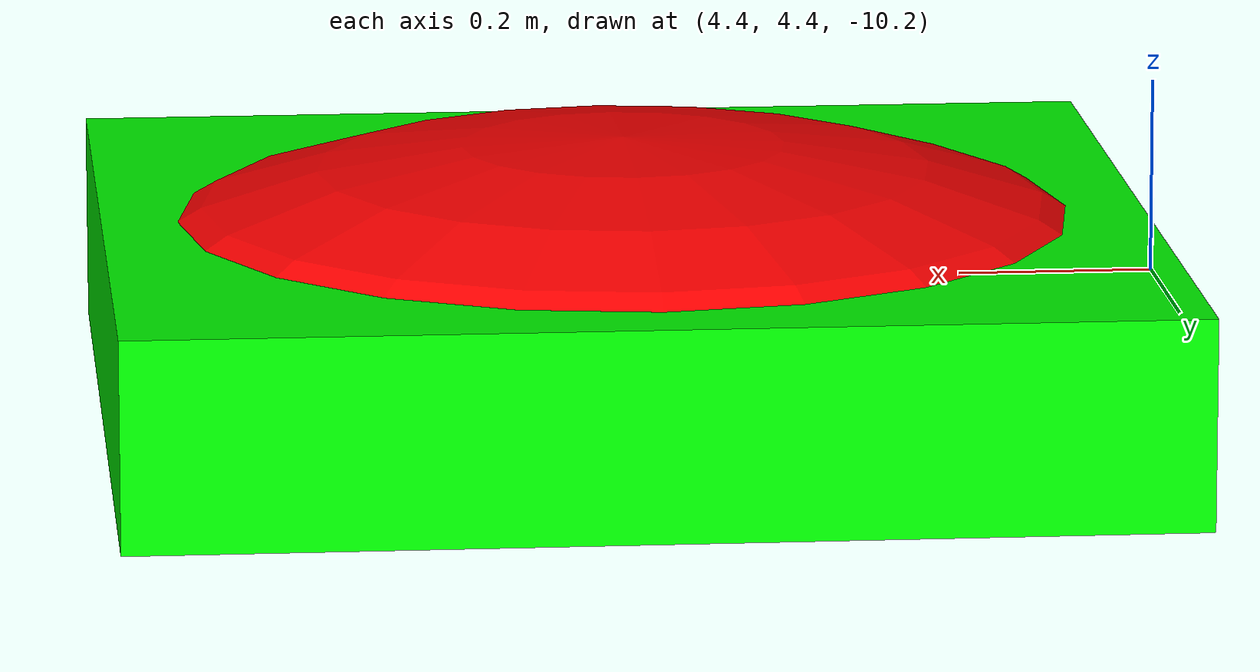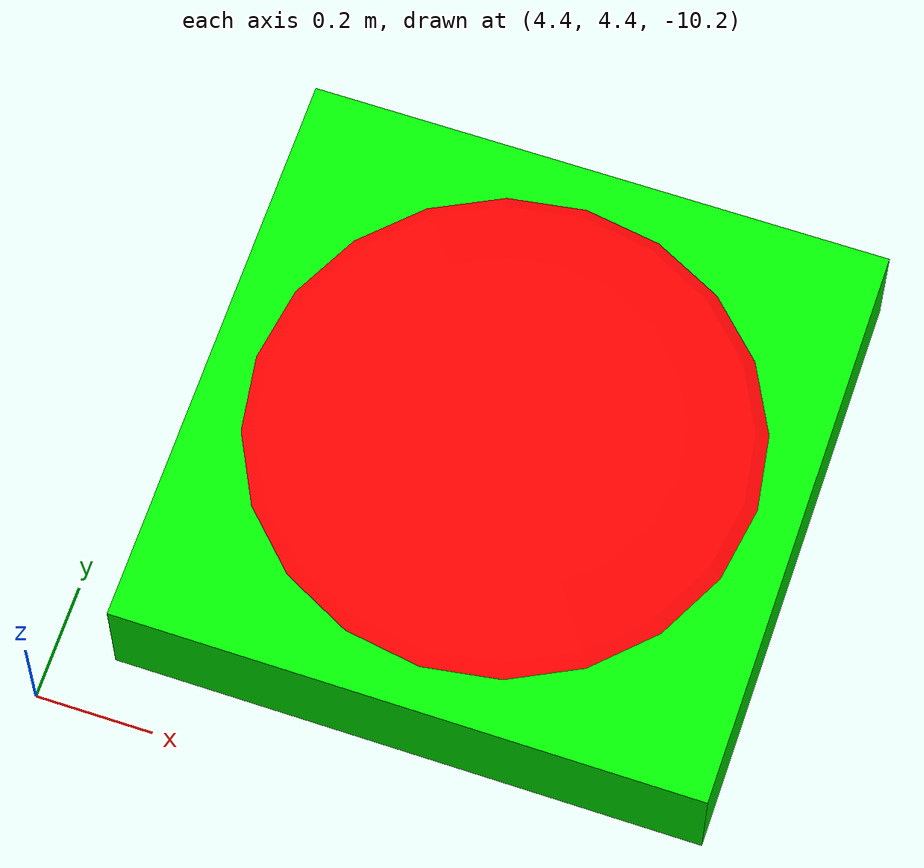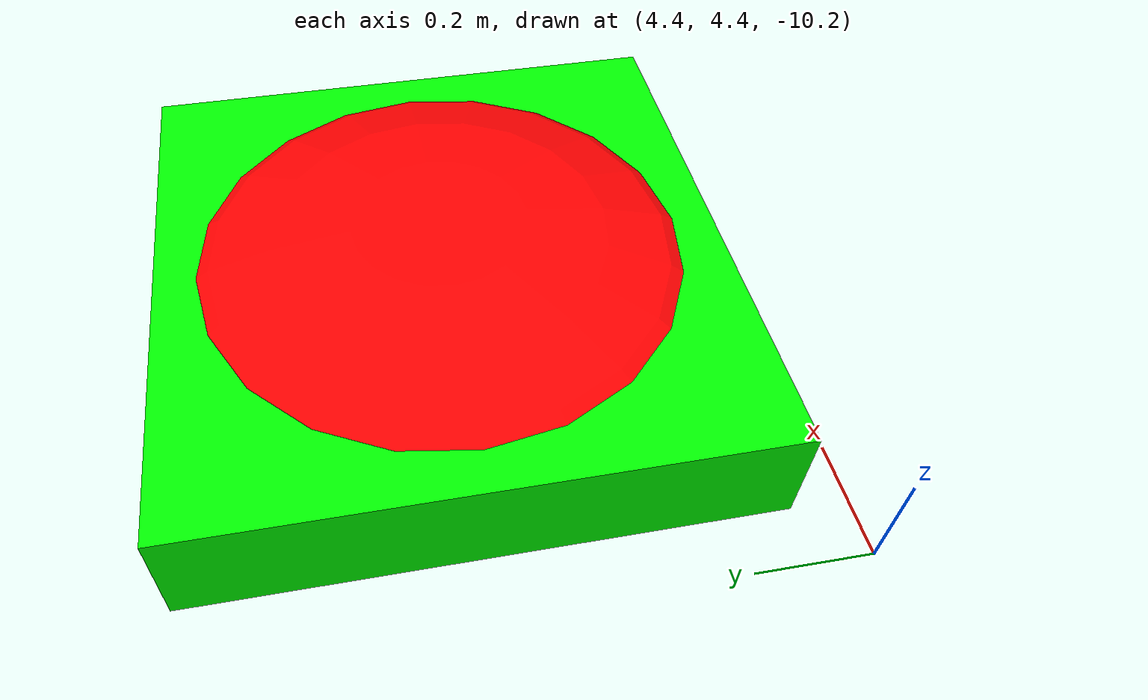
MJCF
<mujoco model="circular bump (v0.1)">
    <compiler inertiafromgeom="true" angle="degree"/>
	<option	timestep="0.01" gravity="0 0 -9.81"/>

	<asset>
		<!--material name="MatGnd" specular="1" shininess=".3" reflectance="0" rgba="1 1 1 1" texture="PixelGround" /-->
		<!--material name="MatSpot" specular="1" shininess="0" reflectance="0.5" rgba="1 1 1 1"/-->
		<!--material name="MatInit" rgba=".8 0 0 1"/-->
	</asset>

	<default>
		<geom contype="1" conaffinity="1"/>
	</default>

    <worldbody>
		<body name="circ-bump1" pos="5 5 -10">
			<geom type="ellipsoid" pos="0 0 -.075" size=".5 .5 .15" rgba="1 0 0 1"/>
			<geom type="box" size=".5 .5 .1" pos = "0 0 -.1" rgba="0 1 0 1"/>
		</body>
		<body name="circ-bump2" pos="5 5 -10">
			<geom type="ellipsoid" pos="0 0 -.075" size=".5 .5 .15" rgba="1 0 0 1"/>
			<geom type="box" size=".5 .5 .1" pos = "0 0 -.1" rgba="0 1 0 1"/>
		</body>
		<body name="circ-bump3" pos="5 5 -10">
			<geom type="ellipsoid" pos="0 0 -.075" size=".5 .5 .15" rgba="1 0 0 1"/>
			<geom type="box" size=".5 .5 .1" pos = "0 0 -.1" rgba="0 1 0 1"/>
		</body>
		<body name="circ-bump4" pos="5 5 -10">
			<geom type="ellipsoid" pos="0 0 -.075" size=".5 .5 .15" rgba="1 0 0 1"/>
			<geom type="box" size=".5 .5 .1" pos = "0 0 -.1" rgba="0 1 0 1"/>
		</body>
		<body name="circ-bump5" pos="5 5 -10">
			<geom type="ellipsoid" pos="0 0 -.075" size=".5 .5 .15" rgba="1 0 0 1"/>
			<geom type="box" size=".5 .5 .1" pos = "0 0 -.1" rgba="0 1 0 1"/>
		</body>
		<body name="circ-bump6" pos="5 5 -10">
			<geom type="ellipsoid" pos="0 0 -.075" size=".5 .5 .15" rgba="1 0 0 1"/>
			<geom type="box" size=".5 .5 .1" pos = "0 0 -.1" rgba="0 1 0 1"/>
		</body>
		<body name="circ-bump7" pos="5 5 -10">
			<geom type="ellipsoid" pos="0 0 -.075" size=".5 .5 .15" rgba="1 0 0 1"/>
			<geom type="box" size=".5 .5 .1" pos = "0 0 -.1" rgba="0 1 0 1"/>
		</body>
		<body name="circ-bump8" pos="5 5 -10">
			<geom type="ellipsoid" pos="0 0 -.075" size=".5 .5 .15" rgba="1 0 0 1"/>
			<geom type="box" size=".5 .5 .1" pos = "0 0 -.1" rgba="0 1 0 1"/>
		</body>
		<body name="circ-bump9" pos="5 5 -10">
			<geom type="ellipsoid" pos="0 0 -.075" size=".5 .5 .15" rgba="1 0 0 1"/>
			<geom type="box" size=".5 .5 .1" pos = "0 0 -.1" rgba="0 1 0 1"/>
		</body>
		<body name="circ-bump10" pos="5 5 -10">
			<geom type="ellipsoid" pos="0 0 -.075" size=".5 .5 .15" rgba="1 0 0 1"/>
			<geom type="box" size=".5 .5 .1" pos = "0 0 -.1" rgba="0 1 0 1"/>
		</body>
		<body name="circ-bump11" pos="5 5 -10">
			<geom type="ellipsoid" pos="0 0 -.075" size=".5 .5 .15" rgba="1 0 0 1"/>
			<geom type="box" size=".5 .5 .1" pos = "0 0 -.1" rgba="0 1 0 1"/>
		</body>
		<body name="circ-bump12" pos="5 5 -10">
			<geom type="ellipsoid" pos="0 0 -.075" size=".5 .5 .15" rgba="1 0 0 1"/>
			<geom type="box" size=".5 .5 .1" pos = "0 0 -.1" rgba="0 1 0 1"/>
		</body>
		<body name="circ-bump13" pos="5 5 -10">
			<geom type="ellipsoid" pos="0 0 -.075" size=".5 .5 .15" rgba="1 0 0 1"/>
			<geom type="box" size=".5 .5 .1" pos = "0 0 -.1" rgba="0 1 0 1"/>
		</body>
		<body name="circ-bump14" pos="5 5 -10">
			<geom type="ellipsoid" pos="0 0 -.075" size=".5 .5 .15" rgba="1 0 0 1"/>
			<geom type="box" size=".5 .5 .1" pos = "0 0 -.1" rgba="0 1 0 1"/>
		</body>
		<body name="circ-bump15" pos="5 5 -10">
			<geom type="ellipsoid" pos="0 0 -.075" size=".5 .5 .15" rgba="1 0 0 1"/>
			<geom type="box" size=".5 .5 .1" pos = "0 0 -.1" rgba="0 1 0 1"/>
		</body>
        <body name="circ-bump16" pos="5 5 -10">
			<geom type="ellipsoid" pos="0 0 -.075" size=".5 .5 .15" rgba="1 0 0 1"/>
			<geom type="box" size=".5 .5 .1" pos = "0 0 -.1" rgba="0 1 0 1"/>
		</body>
        <body name="circ-bump17" pos="5 5 -10">
			<geom type="ellipsoid" pos="0 0 -.075" size=".5 .5 .15" rgba="1 0 0 1"/>
			<geom type="box" size=".5 .5 .1" pos = "0 0 -.1" rgba="0 1 0 1"/>
		</body>
        <body name="circ-bump18" pos="5 5 -10">
			<geom type="ellipsoid" pos="0 0 -.075" size=".5 .5 .15" rgba="1 0 0 1"/>
			<geom type="box" size=".5 .5 .1" pos = "0 0 -.1" rgba="0 1 0 1"/>
		</body>
        <body name="circ-bump19" pos="5 5 -10">
			<geom type="ellipsoid" pos="0 0 -.075" size=".5 .5 .15" rgba="1 0 0 1"/>
			<geom type="box" size=".5 .5 .1" pos = "0 0 -.1" rgba="0 1 0 1"/>
		</body>
        <body name="circ-bump20" pos="5 5 -10">
			<geom type="ellipsoid" pos="0 0 -.075" size=".5 .5 .15" rgba="1 0 0 1"/>
			<geom type="box" size=".5 .5 .1" pos = "0 0 -.1" rgba="0 1 0 1"/>
		</body>
        <body name="circ-bump21" pos="5 5 -10">
			<geom type="ellipsoid" pos="0 0 -.075" size=".5 .5 .15" rgba="1 0 0 1"/>
			<geom type="box" size=".5 .5 .1" pos = "0 0 -.1" rgba="0 1 0 1"/>
		</body>
        <body name="circ-bump22" pos="5 5 -10">
			<geom type="ellipsoid" pos="0 0 -.075" size=".5 .5 .15" rgba="1 0 0 1"/>
			<geom type="box" size=".5 .5 .1" pos = "0 0 -.1" rgba="0 1 0 1"/>
		</body>
        <body name="circ-bump23" pos="5 5 -10">
			<geom type="ellipsoid" pos="0 0 -.075" size=".5 .5 .15" rgba="1 0 0 1"/>
			<geom type="box" size=".5 .5 .1" pos = "0 0 -.1" rgba="0 1 0 1"/>
		</body>
        <body name="circ-bump24" pos="5 5 -10">
			<geom type="ellipsoid" pos="0 0 -.075" size=".5 .5 .15" rgba="1 0 0 1"/>
			<geom type="box" size=".5 .5 .1" pos = "0 0 -.1" rgba="0 1 0 1"/>
		</body>
        <body name="circ-bump25" pos="5 5 -10">
			<geom type="ellipsoid" pos="0 0 -.075" size=".5 .5 .15" rgba="1 0 0 1"/>
			<geom type="box" size=".5 .5 .1" pos = "0 0 -.1" rgba="0 1 0 1"/>
		</body>
        <body name="circ-bump26" pos="5 5 -10">
			<geom type="ellipsoid" pos="0 0 -.075" size=".5 .5 .15" rgba="1 0 0 1"/>
			<geom type="box" size=".5 .5 .1" pos = "0 0 -.1" rgba="0 1 0 1"/>
		</body>
        <body name="circ-bump27" pos="5 5 -10">
			<geom type="ellipsoid" pos="0 0 -.075" size=".5 .5 .15" rgba="1 0 0 1"/>
			<geom type="box" size=".5 .5 .1" pos = "0 0 -.1" rgba="0 1 0 1"/>
		</body>
        <body name="circ-bump28" pos="5 5 -10">
			<geom type="ellipsoid" pos="0 0 -.075" size=".5 .5 .15" rgba="1 0 0 1"/>
			<geom type="box" size=".5 .5 .1" pos = "0 0 -.1" rgba="0 1 0 1"/>
		</body>
        <body name="circ-bump29" pos="5 5 -10">
			<geom type="ellipsoid" pos="0 0 -.075" size=".5 .5 .15" rgba="1 0 0 1"/>
			<geom type="box" size=".5 .5 .1" pos = "0 0 -.1" rgba="0 1 0 1"/>
		</body>
        <body name="circ-bump30" pos="5 5 -10">
			<geom type="ellipsoid" pos="0 0 -.075" size=".5 .5 .15" rgba="1 0 0 1"/>
			<geom type="box" size=".5 .5 .1" pos = "0 0 -.1" rgba="0 1 0 1"/>
		</body>
        <body name="circ-bump31" pos="5 5 -10">
			<geom type="ellipsoid" pos="0 0 -.075" size=".5 .5 .15" rgba="1 0 0 1"/>
			<geom type="box" size=".5 .5 .1" pos = "0 0 -.1" rgba="0 1 0 1"/>
		</body>
        <body name="circ-bump32" pos="5 5 -10">
			<geom type="ellipsoid" pos="0 0 -.075" size=".5 .5 .15" rgba="1 0 0 1"/>
			<geom type="box" size=".5 .5 .1" pos = "0 0 -.1" rgba="0 1 0 1"/>
		</body>
        <body name="circ-bump33" pos="5 5 -10">
			<geom type="ellipsoid" pos="0 0 -.075" size=".5 .5 .15" rgba="1 0 0 1"/>
			<geom type="box" size=".5 .5 .1" pos = "0 0 -.1" rgba="0 1 0 1"/>
		</body>
        <body name="circ-bump34" pos="5 5 -10">
			<geom type="ellipsoid" pos="0 0 -.075" size=".5 .5 .15" rgba="1 0 0 1"/>
			<geom type="box" size=".5 .5 .1" pos = "0 0 -.1" rgba="0 1 0 1"/>
		</body>
        <body name="circ-bump35" pos="5 5 -10">
			<geom type="ellipsoid" pos="0 0 -.075" size=".5 .5 .15" rgba="1 0 0 1"/>
			<geom type="box" size=".5 .5 .1" pos = "0 0 -.1" rgba="0 1 0 1"/>
		</body>
        <body name="circ-bump36" pos="5 5 -10">
			<geom type="ellipsoid" pos="0 0 -.075" size=".5 .5 .15" rgba="1 0 0 1"/>
			<geom type="box" size=".5 .5 .1" pos = "0 0 -.1" rgba="0 1 0 1"/>
		</body>
        <body name="circ-bump37" pos="5 5 -10">
			<geom type="ellipsoid" pos="0 0 -.075" size=".5 .5 .15" rgba="1 0 0 1"/>
			<geom type="box" size=".5 .5 .1" pos = "0 0 -.1" rgba="0 1 0 1"/>
		</body>
        <body name="circ-bump38" pos="5 5 -10">
			<geom type="ellipsoid" pos="0 0 -.075" size=".5 .5 .15" rgba="1 0 0 1"/>
			<geom type="box" size=".5 .5 .1" pos = "0 0 -.1" rgba="0 1 0 1"/>
		</body>
        <body name="circ-bump39" pos="5 5 -10">
			<geom type="ellipsoid" pos="0 0 -.075" size=".5 .5 .15" rgba="1 0 0 1"/>
			<geom type="box" size=".5 .5 .1" pos = "0 0 -.1" rgba="0 1 0 1"/>
		</body>
        <body name="circ-bump40" pos="5 5 -10">
			<geom type="ellipsoid" pos="0 0 -.075" size=".5 .5 .15" rgba="1 0 0 1"/>
			<geom type="box" size=".5 .5 .1" pos = "0 0 -.1" rgba="0 1 0 1"/>
		</body>

	</worldbody>
</mujoco>
